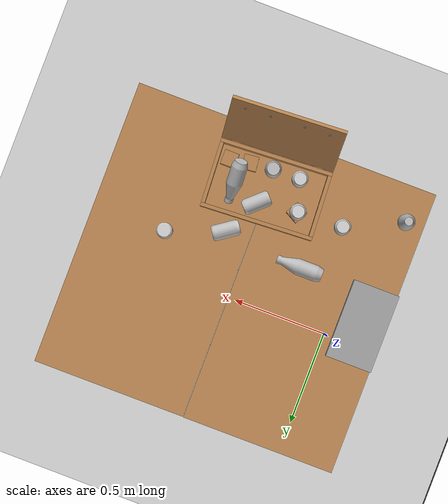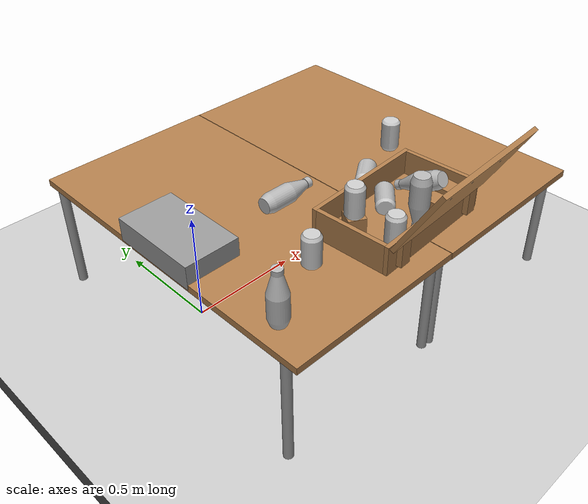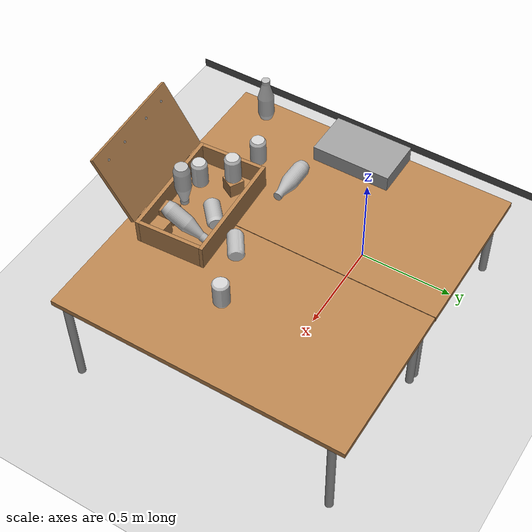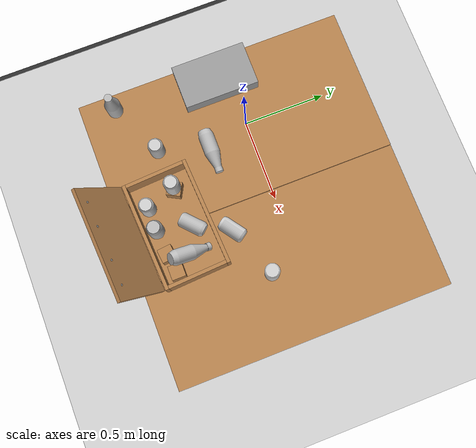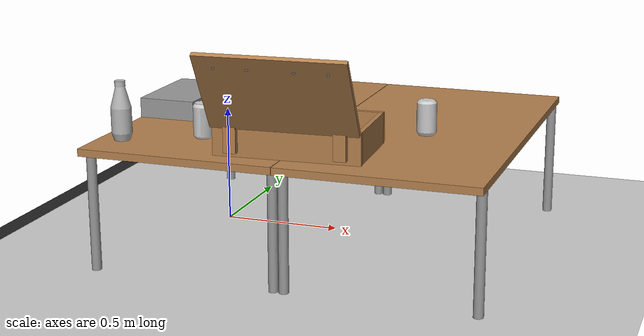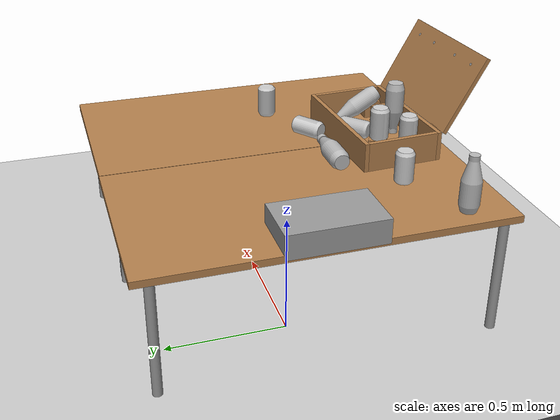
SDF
<sdf version="1.6">
 <world name="default">
  <model name="ground_plane">
   <static>1</static>
   <link name="link">
    <collision name="collision">
     <geometry><plane><normal>0 0 1</normal><size>100 100</size></plane></geometry>
     <surface><friction><ode><mu>100</mu><mu2>50</mu2></ode></friction></surface>
    </collision>
    <visual name="visual">
     <cast_shadows>0</cast_shadows>
     <geometry><plane><normal>0 0 1</normal><size>100 100</size></plane></geometry>
     <material>
      <script><uri>file://media/materials/scripts/gazebo.material</uri><name>Gazebo/Grey</name></script>
     </material>
    </visual>
   </link>
  </model>
  <model name="table">
   <static>1</static>
   <link name="link">
    <collision name="surface">
     <pose>0 0 0.5 0 -0 0</pose>
     <geometry><box><size>1.5 0.8 0.03</size></box></geometry>
     <surface><friction><ode><mu>0.6</mu><mu2>0.6</mu2></ode></friction></surface>
    </collision>
    <visual name="visual1">
     <pose>0 0 0.5 0 -0 0</pose>
     <geometry><box><size>1.5 0.8 0.03</size></box></geometry>
     <material>
      <script><uri>file://media/materials/scripts/gazebo.material</uri><name>Gazebo/Wood</name></script>
     </material>
    </visual>
    <collision name="front_left_leg">
     <pose>0.68 0.38 0.25 0 -0 0</pose>
     <geometry><cylinder><radius>0.02</radius><length>0.5</length></cylinder></geometry>
    </collision>
    <visual name="front_left_leg">
     <pose>0.68 0.38 0.25 0 -0 0</pose>
     <geometry><cylinder><radius>0.02</radius><length>0.5</length></cylinder></geometry>
     <material>
      <script><uri>file://media/materials/scripts/gazebo.material</uri><name>Gazebo/Grey</name></script>
     </material>
    </visual>
    <collision name="front_right_leg">
     <pose>0.68 -0.38 0.25 0 -0 0</pose>
     <geometry><cylinder><radius>0.02</radius><length>0.5</length></cylinder></geometry>
    </collision>
    <visual name="front_right_leg">
     <pose>0.68 -0.38 0.25 0 -0 0</pose>
     <geometry><cylinder><radius>0.02</radius><length>0.5</length></cylinder></geometry>
     <material>
      <script><uri>file://media/materials/scripts/gazebo.material</uri><name>Gazebo/Grey</name></script>
     </material>
    </visual>
    <collision name="back_right_leg">
     <pose>-0.68 -0.38 0.25 0 -0 0</pose>
     <geometry><cylinder><radius>0.02</radius><length>0.5</length></cylinder></geometry>
    </collision>
    <visual name="back_right_leg">
     <pose>-0.68 -0.38 0.25 0 -0 0</pose>
     <geometry><cylinder><radius>0.02</radius><length>0.5</length></cylinder></geometry>
     <material>
      <script><uri>file://media/materials/scripts/gazebo.material</uri><name>Gazebo/Grey</name></script>
     </material>
    </visual>
    <collision name="back_left_leg">
     <pose>-0.68 0.38 0.25 0 -0 0</pose>
     <geometry><cylinder><radius>0.02</radius><length>0.5</length></cylinder></geometry>
    </collision>
    <visual name="back_left_leg">
     <pose>-0.68 0.38 0.25 0 -0 0</pose>
     <geometry><cylinder><radius>0.02</radius><length>0.5</length></cylinder></geometry>
     <material>
      <script><uri>file://media/materials/scripts/gazebo.material</uri><name>Gazebo/Grey</name></script>
     </material>
    </visual>
   </link>
   <pose>0.141486 -0.111698 0 0 -0 1.57274</pose>
  </model>
  <model name="asphalt_plane">
   <static>1</static>
   <link name="link">
    <collision name="collision"><geometry><box><size>20 20 0.1</size></box></geometry></collision>
    <visual name="visual">
     <cast_shadows>0</cast_shadows>
     <geometry><box><size>20 20 0.1</size></box></geometry>
     <material>
      <script>
       <uri>model://asphalt_plane/materials/scripts</uri>
       <uri>model://asphalt_plane/materials/textures</uri>
       <name>vrc/asphalt</name>
      </script>
     </material>
    </visual>
   </link>
   <pose>-86.5622 -4.74054 0 0 -0 0</pose>
  </model>
  <model name="unit_box">
   <static>1</static>
   <pose>-0.139333 -0.111698 0.545396 0 -0 0</pose>
   <link name="link">
    <inertial>
     <mass>1</mass>
     <inertia>
      <ixx>0.166667</ixx>
      <ixy>0</ixy>
      <ixz>0</ixz>
      <iyy>0.166667</iyy>
      <iyz>0</iyz>
      <izz>0.166667</izz>
     </inertia>
    </inertial>
    <visual name="visual">
     <geometry><box><size>0.241277 0.407907 0.103712</size></box></geometry>
     <material>
      <script><name>Gazebo/Grey</name><uri>file://media/materials/scripts/gazebo.material</uri></script>
     </material>
    </visual>
   </link>
  </model>
  <model name="wooden_case">
   <link name="base">
    <pose>0 0 0.024 0 -0 0</pose>
    <inertial>
     <pose>-0.022184 0 0.171592 0 -0 0</pose>
     <mass>3.96264</mass>
     <inertia>
      <ixx>0.213536</ixx>
      <ixy>0</ixy>
      <ixz>0.000779377</ixz>
      <iyy>0.0708943</iyy>
      <iyz>0</iyz>
      <izz>0.154604</izz>
     </inertia>
    </inertial>
    <collision name="collision_back">
     <pose>-0.053975 0 0.1778 0 -0 0</pose>
     <geometry><box><size>0.01905 0.5461 0.3175</size></box></geometry>
     <surface>
      <contact>
       <poissons_ratio>0.347</poissons_ratio>
       <elastic_modulus>8.8e+09</elastic_modulus>
       <ode><kp>100000</kp><kd>100</kd><max_vel>100</max_vel><min_depth>0.001</min_depth></ode>
      </contact>
      <friction>
       <ode><mu>3</mu><mu2>3</mu2></ode>
       <torsional>
        <coefficient>1</coefficient>
        <use_patch_radius>0</use_patch_radius>
        <surface_radius>0.01</surface_radius>
       </torsional>
      </friction>
     </surface>
    </collision>
    <visual name="visual_back">
     <pose>-0.053975 0 0.1778 0 -0 0</pose>
     <geometry><box><size>0.01905 0.5461 0.3175</size></box></geometry>
     <material>
      <script><uri>file://media/materials/scripts/gazebo.material</uri><name>Gazebo/Wood</name></script>
     </material>
    </visual>
    <collision name="collision_bottom">
     <pose>0 0 0.009525 0 -0 0</pose>
     <geometry><box><size>0.127 0.5842 0.01905</size></box></geometry>
     <surface>
      <contact>
       <poissons_ratio>0.347</poissons_ratio>
       <elastic_modulus>8.8e+09</elastic_modulus>
       <ode><kp>100000</kp><kd>100</kd><max_vel>100</max_vel><min_depth>0.001</min_depth></ode>
      </contact>
      <friction>
       <torsional>
        <coefficient>1</coefficient>
        <use_patch_radius>0</use_patch_radius>
        <surface_radius>0.01</surface_radius>
       </torsional>
      </friction>
     </surface>
    </collision>
    <visual name="visual_bottom">
     <pose>0 0 0.009525 0 -0 0</pose>
     <geometry><box><size>0.127 0.5842 0.01905</size></box></geometry>
     <material>
      <script><uri>file://media/materials/scripts/gazebo.material</uri><name>Gazebo/Wood</name></script>
     </material>
    </visual>
    <collision name="collision_top">
     <pose>0 0 0.346075 0 -0 0</pose>
     <geometry><box><size>0.127 0.5842 0.01905</size></box></geometry>
     <surface>
      <contact>
       <poissons_ratio>0.347</poissons_ratio>
       <elastic_modulus>8.8e+09</elastic_modulus>
       <ode><kp>100000</kp><kd>100</kd><max_vel>100</max_vel><min_depth>0.001</min_depth></ode>
      </contact>
      <friction>
       <torsional>
        <coefficient>1</coefficient>
        <use_patch_radius>0</use_patch_radius>
        <surface_radius>0.01</surface_radius>
       </torsional>
      </friction>
     </surface>
    </collision>
    <visual name="visual_top">
     <pose>0 0 0.346075 0 -0 0</pose>
     <geometry><box><size>0.127 0.5842 0.01905</size></box></geometry>
     <material>
      <script><uri>file://media/materials/scripts/gazebo.material</uri><name>Gazebo/Wood</name></script>
     </material>
    </visual>
    <collision name="collision_left">
     <pose>0 -0.282575 0.1778 0 -0 0</pose>
     <geometry><box><size>0.127 0.01905 0.3175</size></box></geometry>
     <surface>
      <contact>
       <poissons_ratio>0.347</poissons_ratio>
       <elastic_modulus>8.8e+09</elastic_modulus>
       <ode><kp>100000</kp><kd>100</kd><max_vel>100</max_vel><min_depth>0.001</min_depth></ode>
      </contact>
      <friction>
       <torsional>
        <coefficient>1</coefficient>
        <use_patch_radius>0</use_patch_radius>
        <surface_radius>0.01</surface_radius>
       </torsional>
      </friction>
     </surface>
    </collision>
    <visual name="visual_left">
     <pose>0 -0.282575 0.1778 0 -0 0</pose>
     <geometry><box><size>0.127 0.01905 0.3175</size></box></geometry>
     <material>
      <script><uri>file://media/materials/scripts/gazebo.material</uri><name>Gazebo/Wood</name></script>
     </material>
    </visual>
    <collision name="collision_right">
     <pose>0 0.282575 0.1778 0 -0 0</pose>
     <geometry><box><size>0.127 0.01905 0.3175</size></box></geometry>
     <surface>
      <contact>
       <poissons_ratio>0.347</poissons_ratio>
       <elastic_modulus>8.8e+09</elastic_modulus>
       <ode><kp>100000</kp><kd>100</kd><max_vel>100</max_vel><min_depth>0.001</min_depth></ode>
      </contact>
      <friction>
       <torsional>
        <coefficient>1</coefficient>
        <use_patch_radius>0</use_patch_radius>
        <surface_radius>0.01</surface_radius>
       </torsional>
      </friction>
     </surface>
    </collision>
    <visual name="visual_right">
     <pose>0 0.282575 0.1778 0 -0 0</pose>
     <geometry><box><size>0.127 0.01905 0.3175</size></box></geometry>
     <material>
      <script><uri>file://media/materials/scripts/gazebo.material</uri><name>Gazebo/Wood</name></script>
     </material>
    </visual>
    <collision name="collision_block_left">
     <pose>0.0095 -0.2151 -0.012 0 -0 0</pose>
     <geometry><box><size>0.108 0.05 0.024</size></box></geometry>
     <surface>
      <contact>
       <poissons_ratio>0.347</poissons_ratio>
       <elastic_modulus>8.8e+09</elastic_modulus>
       <ode><kp>100000</kp><kd>100</kd><max_vel>100</max_vel><min_depth>0.001</min_depth></ode>
      </contact>
      <friction>
       <torsional>
        <coefficient>1</coefficient>
        <use_patch_radius>0</use_patch_radius>
        <surface_radius>0.01</surface_radius>
       </torsional>
      </friction>
     </surface>
    </collision>
    <visual name="visual_block_left">
     <pose>0.0095 -0.2151 -0.012 0 -0 0</pose>
     <geometry><box><size>0.108 0.05 0.024</size></box></geometry>
     <material>
      <script><uri>file://media/materials/scripts/gazebo.material</uri><name>Gazebo/Wood</name></script>
     </material>
    </visual>
    <collision name="collision_block_right">
     <pose>0.0095 0.2151 -0.012 0 -0 0</pose>
     <geometry><box><size>0.108 0.05 0.024</size></box></geometry>
     <surface>
      <contact>
       <poissons_ratio>0.347</poissons_ratio>
       <elastic_modulus>8.8e+09</elastic_modulus>
       <ode><kp>100000</kp><kd>100</kd><max_vel>100</max_vel><min_depth>0.001</min_depth></ode>
      </contact>
      <friction>
       <torsional>
        <coefficient>1</coefficient>
        <use_patch_radius>0</use_patch_radius>
        <surface_radius>0.01</surface_radius>
       </torsional>
      </friction>
     </surface>
    </collision>
    <visual name="visual_block_right">
     <pose>0.0095 0.2151 -0.012 0 -0 0</pose>
     <geometry><box><size>0.108 0.05 0.024</size></box></geometry>
     <material>
      <script><uri>file://media/materials/scripts/gazebo.material</uri><name>Gazebo/Wood</name></script>
     </material>
    </visual>
   </link>
   <link name="lid">
    <pose>0.210430 0.000001 -0.076823 0 0.523601 0</pose>
    <inertial>
     <mass>1.97874</mass>
     <inertia>
      <ixx>0.0563367</ixx>
      <ixy>0</ixy>
      <ixz>0</ixz>
      <iyy>0.020911</iyy>
      <iyz>0</iyz>
      <izz>0.0771281</izz>
     </inertia>
    </inertial>
    <collision name="collision">
     <geometry><box><size>0.3556 0.5842 0.01905</size></box></geometry>
     <surface>
      <contact>
       <poissons_ratio>0.347</poissons_ratio>
       <elastic_modulus>8.8e+09</elastic_modulus>
       <ode><kp>100000</kp><kd>100</kd><max_vel>100</max_vel><min_depth>0.001</min_depth></ode>
      </contact>
      <friction>
       <torsional>
        <coefficient>1</coefficient>
        <use_patch_radius>0</use_patch_radius>
        <surface_radius>0.01</surface_radius>
       </torsional>
      </friction>
     </surface>
    </collision>
    <visual name="visual">
     <geometry><box><size>0.3556 0.5842 0.01905</size></box></geometry>
     <material>
      <script><uri>file://media/materials/scripts/gazebo.material</uri><name>Gazebo/Wood</name></script>
     </material>
    </visual>
    <visual name="tee_nut_1">
     <pose>0.122 -0.216 0 0 -0 0</pose>
     <geometry><cylinder><radius>0.00635</radius><length>0.0192405</length></cylinder></geometry>
     <material>
      <script><uri>file://media/materials/scripts/gazebo.material</uri><name>Gazebo/Grey</name></script>
     </material>
    </visual>
    <visual name="tee_nut_2">
     <pose>0.122 -0.088 0 0 -0 0</pose>
     <geometry><cylinder><radius>0.00635</radius><length>0.0192405</length></cylinder></geometry>
     <material>
      <script><uri>file://media/materials/scripts/gazebo.material</uri><name>Gazebo/Grey</name></script>
     </material>
    </visual>
    <visual name="tee_nut_3">
     <pose>0.122 0.088 0 0 -0 0</pose>
     <geometry><cylinder><radius>0.00635</radius><length>0.0192405</length></cylinder></geometry>
     <material>
      <script><uri>file://media/materials/scripts/gazebo.material</uri><name>Gazebo/Grey</name></script>
     </material>
    </visual>
    <visual name="tee_nut_4">
     <pose>0.122 0.216 0 0 -0 0</pose>
     <geometry><cylinder><radius>0.00635</radius><length>0.0192405</length></cylinder></geometry>
     <material>
      <script><uri>file://media/materials/scripts/gazebo.material</uri><name>Gazebo/Grey</name></script>
     </material>
    </visual>
   </link>
   <joint name="lid_hinge" type="revolute">
    <pose>-0.1778 0 0.01905 0 -0 0</pose>
    <parent>base</parent>
    <child>lid</child>
    <axis>
     <xyz>0 1 0</xyz>
     <limit><upper>0.523599</upper><lower>-1.5708</lower></limit>
     <use_parent_model_frame>0</use_parent_model_frame>
     <dynamics><spring_reference>0</spring_reference><spring_stiffness>0</spring_stiffness></dynamics>
    </axis>
   </joint>
   <pose>0.566347 -0.782215 0.577461 -0.033599 -1.57073 -1.48169</pose>
  </model>
  <model name="table_clone">
   <static>1</static>
   <link name="link">
    <collision name="surface">
     <pose>0 0 0.5 0 -0 0</pose>
     <geometry><box><size>1.5 0.8 0.03</size></box></geometry>
     <surface><friction><ode><mu>0.6</mu><mu2>0.6</mu2></ode></friction></surface>
    </collision>
    <visual name="visual1">
     <pose>0 0 0.5 0 -0 0</pose>
     <geometry><box><size>1.5 0.8 0.03</size></box></geometry>
     <material>
      <script><uri>file://media/materials/scripts/gazebo.material</uri><name>Gazebo/Wood</name></script>
     </material>
    </visual>
    <collision name="front_left_leg">
     <pose>0.68 0.38 0.25 0 -0 0</pose>
     <geometry><cylinder><radius>0.02</radius><length>0.5</length></cylinder></geometry>
    </collision>
    <visual name="front_left_leg">
     <pose>0.68 0.38 0.25 0 -0 0</pose>
     <geometry><cylinder><radius>0.02</radius><length>0.5</length></cylinder></geometry>
     <material>
      <script><uri>file://media/materials/scripts/gazebo.material</uri><name>Gazebo/Grey</name></script>
     </material>
    </visual>
    <collision name="front_right_leg">
     <pose>0.68 -0.38 0.25 0 -0 0</pose>
     <geometry><cylinder><radius>0.02</radius><length>0.5</length></cylinder></geometry>
    </collision>
    <visual name="front_right_leg">
     <pose>0.68 -0.38 0.25 0 -0 0</pose>
     <geometry><cylinder><radius>0.02</radius><length>0.5</length></cylinder></geometry>
     <material>
      <script><uri>file://media/materials/scripts/gazebo.material</uri><name>Gazebo/Grey</name></script>
     </material>
    </visual>
    <collision name="back_right_leg">
     <pose>-0.68 -0.38 0.25 0 -0 0</pose>
     <geometry><cylinder><radius>0.02</radius><length>0.5</length></cylinder></geometry>
    </collision>
    <visual name="back_right_leg">
     <pose>-0.68 -0.38 0.25 0 -0 0</pose>
     <geometry><cylinder><radius>0.02</radius><length>0.5</length></cylinder></geometry>
     <material>
      <script><uri>file://media/materials/scripts/gazebo.material</uri><name>Gazebo/Grey</name></script>
     </material>
    </visual>
    <collision name="back_left_leg">
     <pose>-0.68 0.38 0.25 0 -0 0</pose>
     <geometry><cylinder><radius>0.02</radius><length>0.5</length></cylinder></geometry>
    </collision>
    <visual name="back_left_leg">
     <pose>-0.68 0.38 0.25 0 -0 0</pose>
     <geometry><cylinder><radius>0.02</radius><length>0.5</length></cylinder></geometry>
     <material>
      <script><uri>file://media/materials/scripts/gazebo.material</uri><name>Gazebo/Grey</name></script>
     </material>
    </visual>
   </link>
   <pose>0.9444 -0.111698 0 0 -0 1.57274</pose>
  </model>
  <model name="Blue Bottle">
   <static>0</static>
   <link name="link">
    <inertial>
     <mass>0.3</mass>
     <inertia>
      <ixx>0.00055575</ixx>
      <ixy>0</ixy>
      <ixz>0</ixz>
      <iyy>0.00055575</iyy>
      <iyz>0</iyz>
      <izz>0.0001755</izz>
     </inertia>
    </inertial>
    <collision name="collision">
     <geometry>
      <mesh><uri>model://blueBottle/meshes/bottleBlue.dae</uri><scale>0.041 0.041 0.041</scale></mesh>
     </geometry>
     <surface>
      <friction><ode><mu>3</mu><mu2>3</mu2></ode></friction>
      <contact><ode><kp>1e+07</kp><kd>1</kd><min_depth>0.001</min_depth><max_vel>0.5</max_vel></ode></contact>
     </surface>
    </collision>
    <visual name="visual">
     <geometry>
      <mesh><uri>model://blueBottle/meshes/bottleBlue.dae</uri><scale>0.041 0.041 0.041</scale></mesh>
     </geometry>
    </visual>
   </link>
   <pose>-0.159292 -0.676524 0.633877 0.001806 -0.000545 -0.00163</pose>
  </model>
  <model name="Red Can_clone_clone">
   <static>0</static>
   <link name="link">
    <inertial>
     <mass>0.3</mass>
     <inertia>
      <ixx>0.00055575</ixx>
      <ixy>0</ixy>
      <ixz>0</ixz>
      <iyy>0.00055575</iyy>
      <iyz>0</iyz>
      <izz>0.0001755</izz>
     </inertia>
    </inertial>
    <collision name="collision">
     <geometry><mesh><uri>model://redCan/meshes/canRed.dae</uri><scale>0.04 0.04 0.04</scale></mesh></geometry>
     <surface>
      <friction><ode><mu>3</mu><mu2>3</mu2></ode></friction>
      <contact><ode><kp>1e+07</kp><kd>1</kd><min_depth>0.001</min_depth><max_vel>0.5</max_vel></ode></contact>
     </surface>
    </collision>
    <visual name="visual">
     <geometry><mesh><uri>model://redCan/meshes/canRed.dae</uri><scale>0.04 0.04 0.04</scale></mesh></geometry>
    </visual>
   </link>
   <pose>0.958459 -0.207394 0.585734 3.13988 -0.001404 0.657323</pose>
  </model>
  <model name="Green Can_clone_0">
   <static>0</static>
   <link name="link">
    <inertial>
     <mass>0.3</mass>
     <inertia>
      <ixx>0.00055575</ixx>
      <ixy>0</ixy>
      <ixz>0</ixz>
      <iyy>0.00055575</iyy>
      <iyz>0</iyz>
      <izz>0.0001755</izz>
     </inertia>
    </inertial>
    <collision name="collision">
     <geometry><mesh><uri>model://greenCan/meshes/canGreen.dae</uri><scale>0.04 0.04 0.04</scale></mesh></geometry>
     <surface>
      <friction><ode><mu>3</mu><mu2>3</mu2></ode></friction>
      <contact><ode><kp>1e+07</kp><kd>1</kd><min_depth>0.001</min_depth><max_vel>0.5</max_vel></ode></contact>
     </surface>
    </collision>
    <visual name="visual">
     <geometry><mesh><uri>model://greenCan/meshes/canGreen.dae</uri><scale>0.04 0.04 0.04</scale></mesh></geometry>
    </visual>
   </link>
   <pose>0.130878 -0.540014 0.585785 0.000658 -0.001199 1.72861</pose>
  </model>
  <model name="Green Can_clone_1">
   <static>0</static>
   <link name="link">
    <inertial>
     <mass>0.3</mass>
     <inertia>
      <ixx>0.00055575</ixx>
      <ixy>0</ixy>
      <ixz>0</ixz>
      <iyy>0.00055575</iyy>
      <iyz>0</iyz>
      <izz>0.0001755</izz>
     </inertia>
    </inertial>
    <collision name="collision">
     <geometry><mesh><uri>model://greenCan/meshes/canGreen.dae</uri><scale>0.04 0.04 0.04</scale></mesh></geometry>
     <surface>
      <friction><ode><mu>3</mu><mu2>3</mu2></ode></friction>
      <contact><ode><kp>1e+07</kp><kd>1</kd><min_depth>0.001</min_depth><max_vel>0.5</max_vel></ode></contact>
     </surface>
    </collision>
    <visual name="visual">
     <geometry><mesh><uri>model://greenCan/meshes/canGreen.dae</uri><scale>0.04 0.04 0.04</scale></mesh></geometry>
    </visual>
   </link>
   <pose>0.368085 -0.527898 0.676814 3.3e-05 -0.000114 -2.99831</pose>
  </model>
  <model name="Blue Bottle_clone_0">
   <static>0</static>
   <link name="link">
    <inertial>
     <mass>0.3</mass>
     <inertia>
      <ixx>0.00055575</ixx>
      <ixy>0</ixy>
      <ixz>0</ixz>
      <iyy>0.00055575</iyy>
      <iyz>0</iyz>
      <izz>0.0001755</izz>
     </inertia>
    </inertial>
    <collision name="collision">
     <geometry>
      <mesh><uri>model://blueBottle/meshes/bottleBlue.dae</uri><scale>0.041 0.041 0.041</scale></mesh>
     </geometry>
     <surface>
      <friction><ode><mu>3</mu><mu2>3</mu2></ode></friction>
      <contact><ode><kp>1e+07</kp><kd>1</kd><min_depth>0.001</min_depth><max_vel>0.5</max_vel></ode></contact>
     </surface>
    </collision>
    <visual name="visual">
     <geometry>
      <mesh><uri>model://blueBottle/meshes/bottleBlue.dae</uri><scale>0.041 0.041 0.041</scale></mesh>
     </geometry>
    </visual>
   </link>
   <pose>0.262982 -0.27477 0.633841 3e-06 1.57079 3e-06</pose>
  </model>
  <model name="Yellow Can_clone">
   <static>0</static>
   <link name="link">
    <inertial>
     <mass>0.3</mass>
     <inertia>
      <ixx>0.00055575</ixx>
      <ixy>0</ixy>
      <ixz>0</ixz>
      <iyy>0.00055575</iyy>
      <iyz>0</iyz>
      <izz>0.0001755</izz>
     </inertia>
    </inertial>
    <collision name="collision">
     <geometry>
      <mesh><uri>model://yellowCan/meshes/canYellow.dae</uri><scale>0.04 0.04 0.04</scale></mesh>
     </geometry>
     <surface>
      <friction><ode><mu>3</mu><mu2>3</mu2></ode></friction>
      <contact><ode><kp>1e+07</kp><kd>1</kd><min_depth>0.001</min_depth><max_vel>0.5</max_vel></ode></contact>
     </surface>
    </collision>
    <visual name="visual">
     <geometry>
      <mesh><uri>model://yellowCan/meshes/canYellow.dae</uri><scale>0.04 0.04 0.04</scale></mesh>
     </geometry>
    </visual>
   </link>
   <pose>0.577669 -0.502227 0.571828 -1.57068 0.098226 -0.828053</pose>
  </model>
  <model name="Yellow Can_clone_0">
   <static>0</static>
   <link name="link">
    <inertial>
     <mass>0.3</mass>
     <inertia>
      <ixx>0.00055575</ixx>
      <ixy>0</ixy>
      <ixz>0</ixz>
      <iyy>0.00055575</iyy>
      <iyz>0</iyz>
      <izz>0.0001755</izz>
     </inertia>
    </inertial>
    <collision name="collision">
     <geometry>
      <mesh><uri>model://yellowCan/meshes/canYellow.dae</uri><scale>0.04 0.04 0.04</scale></mesh>
     </geometry>
     <surface>
      <friction><ode><mu>3</mu><mu2>3</mu2></ode></friction>
      <contact><ode><kp>1e+07</kp><kd>1</kd><min_depth>0.001</min_depth><max_vel>0.5</max_vel></ode></contact>
     </surface>
    </collision>
    <visual name="visual">
     <geometry>
      <mesh><uri>model://yellowCan/meshes/canYellow.dae</uri><scale>0.04 0.04 0.04</scale></mesh>
     </geometry>
    </visual>
   </link>
   <pose>0.415505 -0.6881 0.602809 3.8e-05 -0.000119 -2.95078</pose>
  </model>
  <model name="Yellow Can_clone_1">
   <static>0</static>
   <link name="link">
    <inertial>
     <mass>0.3</mass>
     <inertia>
      <ixx>0.00055575</ixx>
      <ixy>0</ixy>
      <ixz>0</ixz>
      <iyy>0.00055575</iyy>
      <iyz>0</iyz>
      <izz>0.0001755</izz>
     </inertia>
    </inertial>
    <collision name="collision">
     <geometry>
      <mesh><uri>model://yellowCan/meshes/canYellow.dae</uri><scale>0.04 0.04 0.04</scale></mesh>
     </geometry>
     <surface>
      <friction><ode><mu>3</mu><mu2>3</mu2></ode></friction>
      <contact><ode><kp>1e+07</kp><kd>1</kd><min_depth>0.001</min_depth><max_vel>0.5</max_vel></ode></contact>
     </surface>
    </collision>
    <visual name="visual">
     <geometry>
      <mesh><uri>model://yellowCan/meshes/canYellow.dae</uri><scale>0.04 0.04 0.04</scale></mesh>
     </geometry>
    </visual>
   </link>
   <pose>0.672949 -0.318788 0.554666 -1.57143 -1.08774 2.18588</pose>
  </model>
  <model name="Yellow Bottle_clone">
   <static>0</static>
   <link name="link">
    <inertial>
     <mass>0.3</mass>
     <inertia>
      <ixx>0.00055575</ixx>
      <ixy>0</ixy>
      <ixz>0</ixz>
      <iyy>0.00055575</iyy>
      <iyz>0</iyz>
      <izz>0.0001755</izz>
     </inertia>
    </inertial>
    <collision name="collision">
     <geometry>
      <mesh><uri>model://yellowBottle/meshes/bottleYellowBlue.dae</uri><scale>0.041 0.041 0.041</scale></mesh>
     </geometry>
     <surface>
      <friction><ode><mu>3</mu><mu2>3</mu2></ode></friction>
      <contact><ode><kp>1e+07</kp><kd>1</kd><min_depth>0.001</min_depth><max_vel>0.5</max_vel></ode></contact>
     </surface>
    </collision>
    <visual name="visual">
     <geometry>
      <mesh><uri>model://yellowBottle/meshes/bottleYellowBlue.dae</uri><scale>0.041 0.041 0.041</scale></mesh>
     </geometry>
    </visual>
   </link>
   <pose>0.716963 -0.561767 0.609331 -2.09325 0.119337 -0.02752</pose>
  </model>
  <model name="Yellow Bottle_clone_0">
   <static>0</static>
   <link name="link">
    <inertial>
     <mass>0.3</mass>
     <inertia>
      <ixx>0.00055575</ixx>
      <ixy>0</ixy>
      <ixz>0</ixz>
      <iyy>0.00055575</iyy>
      <iyz>0</iyz>
      <izz>0.0001755</izz>
     </inertia>
    </inertial>
    <collision name="collision">
     <geometry>
      <mesh><uri>model://yellowBottle/meshes/bottleYellowBlue.dae</uri><scale>0.041 0.041 0.041</scale></mesh>
     </geometry>
     <surface>
      <friction><ode><mu>3</mu><mu2>3</mu2></ode></friction>
      <contact><ode><kp>1e+07</kp><kd>1</kd><min_depth>0.001</min_depth><max_vel>0.5</max_vel></ode></contact>
     </surface>
    </collision>
    <visual name="visual">
     <geometry>
      <mesh><uri>model://yellowBottle/meshes/bottleYellowBlue.dae</uri><scale>0.041 0.041 0.041</scale></mesh>
     </geometry>
    </visual>
   </link>
   <pose>0.558281 -0.681913 0.650911 3.14139 -0.000249 3.14141</pose>
  </model>
  <model name="wood_cube_7_5cm_clone">
   <link name="link">
    <pose>0 0 0.0375 0 -0 0</pose>
    <inertial>
     <mass>0.2249</mass>
     <inertia>
      <ixx>0.000210844</ixx>
      <ixy>0</ixy>
      <ixz>0</ixz>
      <iyy>0.000210844</iyy>
      <iyz>0</iyz>
      <izz>0.000210844</izz>
     </inertia>
    </inertial>
    <collision name="collision">
     <geometry><box><size>0.075 0.075 0.075</size></box></geometry>
     <surface>
      <contact>
       <poissons_ratio>0.347</poissons_ratio>
       <elastic_modulus>8.8e+09</elastic_modulus>
       <ode><kp>100000</kp><kd>100</kd><max_vel>100</max_vel><min_depth>0.001</min_depth></ode>
      </contact>
      <friction>
       <torsional>
        <coefficient>1</coefficient>
        <use_patch_radius>0</use_patch_radius>
        <surface_radius>0.01</surface_radius>
       </torsional>
      </friction>
     </surface>
    </collision>
    <visual name="visual">
     <geometry><box><size>0.075 0.075 0.075</size></box></geometry>
     <material>
      <script><uri>file://media/materials/scripts/gazebo.material</uri><name>Gazebo/Wood</name></script>
     </material>
    </visual>
   </link>
   <pose>0.371647 -0.526176 0.607024 -3.14156 -6.2e-05 1.07313</pose>
  </model>
  <model name="wood_cube_7_5cm_clone_0">
   <link name="link">
    <pose>0 0 0.0375 0 -0 0</pose>
    <inertial>
     <mass>0.2249</mass>
     <inertia>
      <ixx>0.000210844</ixx>
      <ixy>0</ixy>
      <ixz>0</ixz>
      <iyy>0.000210844</iyy>
      <iyz>0</iyz>
      <izz>0.000210844</izz>
     </inertia>
    </inertial>
    <collision name="collision">
     <geometry><box><size>0.075 0.075 0.075</size></box></geometry>
     <surface>
      <contact>
       <poissons_ratio>0.347</poissons_ratio>
       <elastic_modulus>8.8e+09</elastic_modulus>
       <ode><kp>100000</kp><kd>100</kd><max_vel>100</max_vel><min_depth>0.001</min_depth></ode>
      </contact>
      <friction>
       <torsional>
        <coefficient>1</coefficient>
        <use_patch_radius>0</use_patch_radius>
        <surface_radius>0.01</surface_radius>
       </torsional>
      </friction>
     </surface>
    </collision>
    <visual name="visual">
     <geometry><box><size>0.075 0.075 0.075</size></box></geometry>
     <material>
      <script><uri>file://media/materials/scripts/gazebo.material</uri><name>Gazebo/Wood</name></script>
     </material>
    </visual>
   </link>
   <pose>0.743103 -0.659272 0.569515 1.49328 1.57073 1.49357</pose>
  </model>
  <model name="wood_cube_7_5cm_clone_0_clone">
   <link name="link">
    <pose>0 0 0.0375 0 -0 0</pose>
    <inertial>
     <mass>0.2249</mass>
     <inertia>
      <ixx>0.000210844</ixx>
      <ixy>0</ixy>
      <ixz>0</ixz>
      <iyy>0.000210844</iyy>
      <iyz>0</iyz>
      <izz>0.000210844</izz>
     </inertia>
    </inertial>
    <collision name="collision">
     <geometry><box><size>0.075 0.075 0.075</size></box></geometry>
     <surface>
      <contact>
       <poissons_ratio>0.347</poissons_ratio>
       <elastic_modulus>8.8e+09</elastic_modulus>
       <ode><kp>100000</kp><kd>100</kd><max_vel>100</max_vel><min_depth>0.001</min_depth></ode>
      </contact>
      <friction>
       <torsional>
        <coefficient>1</coefficient>
        <use_patch_radius>0</use_patch_radius>
        <surface_radius>0.01</surface_radius>
       </torsional>
      </friction>
     </surface>
    </collision>
    <visual name="visual">
     <geometry><box><size>0.075 0.075 0.075</size></box></geometry>
     <material>
      <script><uri>file://media/materials/scripts/gazebo.material</uri><name>Gazebo/Wood</name></script>
     </material>
    </visual>
   </link>
   <pose>0.640781 -0.681382 0.569514 2.01613 1.57073 2.11713</pose>
  </model>
 </world>
</sdf>
